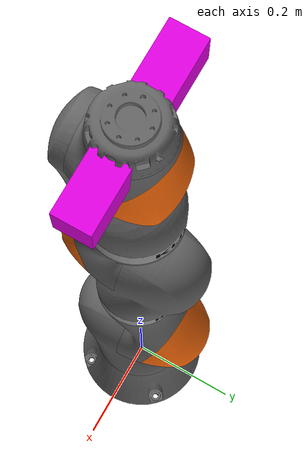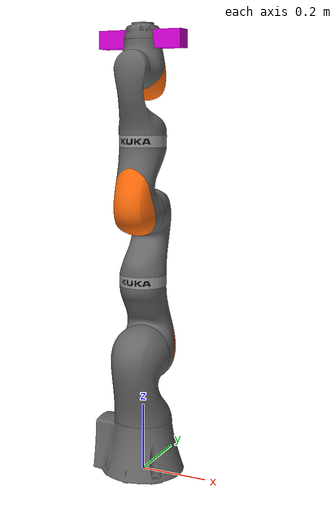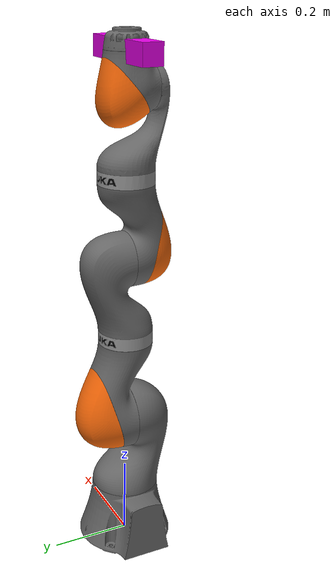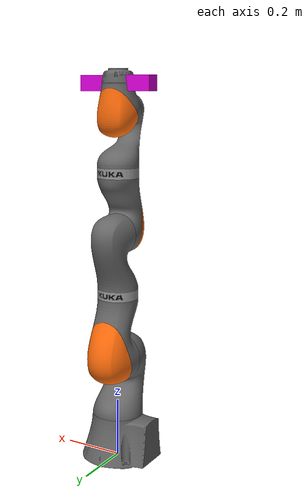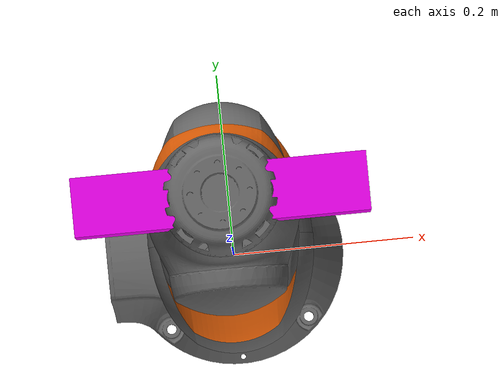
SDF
<?xml version="1.0"?>
<sdf version="1.7">
  <model name="iiwa14">
    <link name="iiwa_link_0">
      <inertial>
        <pose>-0.1 0 0.07 0 0 0</pose>
        <mass>5</mass>
        <inertia>
          <ixx>0.05</ixx>
          <ixy>0</ixy>
          <ixz>0</ixz>
          <iyy>0.06</iyy>
          <iyz>0</iyz>
          <izz>0.03</izz>
        </inertia>
      </inertial>
      <visual name="iiwa_link_0_fixed_joint_lump__iiwa_link_0_visual">
        <geometry>
          <mesh>
            <scale>1 1 1</scale>
            <uri>/home/hanikevi/drake/src/meshes/visual/link_0.obj</uri>
          </mesh>
        </geometry>
        <material>
          <diffuse>0.4 0.4 0.4 1.0</diffuse>
        </material>
      </visual>
      <gravity>1</gravity>
      <velocity_decay/>
      <self_collide>0</self_collide>
    </link>
    <link name="iiwa_link_1">
      <pose relative_to="iiwa_joint_1"/>
      <inertial>
        <pose>0 -0.03 0.12 0 0 0</pose>
        <mass>5.76</mass>
        <inertia>
          <ixx>0.033</ixx>
          <ixy>0</ixy>
          <ixz>0</ixz>
          <iyy>0.0333</iyy>
          <iyz>0</iyz>
          <izz>0.0123</izz>
        </inertia>
      </inertial>
      <visual name="iiwa_link_1_visual">
        <geometry>
          <mesh>
            <scale>1 1 1</scale>
            <uri>/home/hanikevi/drake/src/meshes/visual/link_1.obj</uri>
          </mesh>
        </geometry>
        <material>
          <diffuse>0.4 0.4 0.4 1.0</diffuse>
        </material>
      </visual>
      <gravity>1</gravity>
      <velocity_decay/>
      <self_collide>0</self_collide>
    </link>
    <joint name="iiwa_joint_1" type="revolute">
      <pose relative_to="iiwa_link_0">0 0 0.1575 0 0 0</pose>
      <child>iiwa_link_1</child>
      <parent>iiwa_link_0</parent>
      <axis>
        <xyz>0 0 1</xyz>
        <limit>
          <lower>-2.96706</lower>
          <upper>2.96706</upper>
          <effort>300</effort>
          <velocity>10</velocity>
        </limit>
        <dynamics>
          <damping>0.0</damping>
          <friction>0</friction>
          <spring_reference>0</spring_reference>
          <spring_stiffness>0</spring_stiffness>
        </dynamics>
      </axis>
    </joint>
    <!-- SDFormat 1.7 -->
    <link name="iiwa_link_2">
      <pose relative_to="iiwa_joint_2"/>
      <inertial>
        <pose>0.0003 0.059 0.042 0 0 0</pose>
        <mass>6.35</mass>
        <inertia>
          <ixx>0.0305</ixx>
          <ixy>0</ixy>
          <ixz>0</ixz>
          <iyy>0.0304</iyy>
          <iyz>0</iyz>
          <izz>0.011</izz>
        </inertia>
      </inertial>
      <visual name="iiwa_link_2_visual_grey">
        <geometry>
          <mesh>
            <scale>1 1 1</scale>
            <uri>/home/hanikevi/drake/src/meshes/visual/link_2_grey.obj</uri>
          </mesh>
        </geometry>
        <material>
          <diffuse>0.4 0.4 0.4 1.0</diffuse>
        </material>
      </visual>
      <visual name="iiwa_link_2_visual_orange">
        <geometry>
          <mesh>
            <scale>1 1 1</scale>
            <uri>/home/hanikevi/drake/src/meshes/visual/link_2_orange.obj</uri>
          </mesh>
        </geometry>
        <material>
          <diffuse>1.0 0.423529411765 0.0392156862745 1.0</diffuse>
        </material>
      </visual>
      <gravity>1</gravity>
      <velocity_decay/>
      <self_collide>0</self_collide>
    </link>
    <joint name="iiwa_joint_2" type="revolute">
      <pose relative_to="iiwa_link_1">
        0 0 0.2025 1.570796326794897 0 3.141592653589793
      </pose>
      <child>iiwa_link_2</child>
      <parent>iiwa_link_1</parent>
      <axis>
        <xyz>0 0 1</xyz>
        <limit>
          <lower>-2.0944</lower>
          <upper>2.0944</upper>
          <effort>300</effort>
          <velocity>10</velocity>
        </limit>
        <dynamics>
          <damping>0.0</damping>
          <friction>0</friction>
          <spring_reference>0</spring_reference>
          <spring_stiffness>0</spring_stiffness>
        </dynamics>
      </axis>
    </joint>
    <link name="iiwa_link_3">
      <pose relative_to="iiwa_joint_3"/>
      <inertial>
        <pose>0 0.03 0.13 0 0 0</pose>
        <mass>3.5</mass>
        <inertia>
          <ixx>0.025</ixx>
          <ixy>0</ixy>
          <ixz>0</ixz>
          <iyy>0.0238</iyy>
          <iyz>0</iyz>
          <izz>0.0076</izz>
        </inertia>
      </inertial>
      <visual name="iiwa_link_3_visual">
        <geometry>
          <mesh>
            <scale>1 1 1</scale>
            <uri>/home/hanikevi/drake/src/meshes/visual/link_3.obj</uri>
          </mesh>
        </geometry>
        <material>
          <diffuse>0.4 0.4 0.4 1.0</diffuse>
        </material>
      </visual>
      <visual name="iiwa_link_3_visual_band">
        <geometry>
          <mesh>
            <scale>1 1 1</scale>
            <uri>/home/hanikevi/drake/src//meshes/visual/band.obj</uri>
          </mesh>
        </geometry>
        <material>
          <diffuse>0.6 0.6 0.6 1.0</diffuse>
        </material>
      </visual>
      <visual name="iiwa_link_3_visual_kuka">
        <geometry>
          <mesh>
            <scale>1 1 1</scale>
            <uri>/home/hanikevi/drake/src/meshes/visual/kuka.obj</uri>
          </mesh>
        </geometry>
        <material>
          <diffuse>0 0 0 1</diffuse>
        </material>
      </visual>
      <gravity>1</gravity>
      <velocity_decay/>
      <self_collide>0</self_collide>
    </link>
    <joint name="iiwa_joint_3" type="revolute">
      <pose relative_to="iiwa_link_2">0 0.2045 0 1.570796326794897 0 3.141592653589793</pose>
      <child>iiwa_link_3</child>
      <parent>iiwa_link_2</parent>
      <axis>
        <xyz>0 0 1</xyz>
        <limit>
          <lower>-2.96706</lower>
          <upper>2.96706</upper>
          <effort>300</effort>
          <velocity>10</velocity>
        </limit>
        <dynamics>
          <damping>0.0</damping>
          <friction>0</friction>
          <spring_reference>0</spring_reference>
          <spring_stiffness>0</spring_stiffness>
        </dynamics>
      </axis>
    </joint>
    <link name="iiwa_link_4">
      <pose relative_to="iiwa_joint_4"/>
      <inertial>
        <pose>0 0.067 0.034 0 0 0</pose>
        <mass>3.5</mass>
        <inertia>
          <ixx>0.017</ixx>
          <ixy>0</ixy>
          <ixz>0</ixz>
          <iyy>0.0164</iyy>
          <iyz>0</iyz>
          <izz>0.006</izz>
        </inertia>
      </inertial>
      <visual name="iiwa_link_4_visual_grey">
        <geometry>
          <mesh>
            <scale>1 1 1</scale>
            <uri>/home/hanikevi/drake/src/meshes/visual/link_4_grey.obj</uri>
          </mesh>
        </geometry>
        <material>
          <diffuse>0.4 0.4 0.4 1.0</diffuse>
        </material>
      </visual>
      <visual name="iiwa_link_4_visual_orange">
        <geometry>
          <mesh>
            <scale>1 1 1</scale>
            <uri>/home/hanikevi/drake/src//meshes/visual/link_4_orange.obj</uri>
          </mesh>
        </geometry>
        <material>
          <diffuse>1.0 0.423529411765 0.0392156862745 1.0</diffuse>
        </material>
      </visual>
      <gravity>1</gravity>
      <velocity_decay/>
      <self_collide>0</self_collide>
    </link>
    <joint name="iiwa_joint_4" type="revolute">
      <pose relative_to="iiwa_link_3">0 0 0.2155 1.570796326794897 0 0</pose>
      <child>iiwa_link_4</child>
      <parent>iiwa_link_3</parent>
      <axis>
        <xyz>0 0 1</xyz>
        <limit>
          <lower>-2.0944</lower>
          <upper>2.0944</upper>
          <effort>300</effort>
          <velocity>10</velocity>
        </limit>
        <dynamics>
          <damping>0.0</damping>
          <friction>0</friction>
          <spring_reference>0</spring_reference>
          <spring_stiffness>0</spring_stiffness>
        </dynamics>
      </axis>
    </joint>
    <link name="iiwa_link_5">
      <pose relative_to="iiwa_joint_5"/>
      <inertial>
        <pose>0.0001 0.021 0.076 0 0 0</pose>
        <mass>3.5</mass>
        <inertia>
          <ixx>0.01</ixx>
          <ixy>0</ixy>
          <ixz>0</ixz>
          <iyy>0.0087</iyy>
          <iyz>0</iyz>
          <izz>0.00449</izz>
        </inertia>
      </inertial>
      <visual name="iiwa_link_5_visual">
        <geometry>
          <mesh>
            <scale>1 1 1</scale>
            <uri>/home/hanikevi/drake/src/meshes/visual/link_5.obj</uri>
          </mesh>
        </geometry>
        <material>
          <diffuse>0.4 0.4 0.4 1.0</diffuse>
        </material>
      </visual>
      <visual name="iiwa_link_5_visual_band">
        <geometry>
          <mesh>
            <scale>1 1 1</scale>
            <uri>/home/hanikevi/drake/src/meshes/visual/band.obj</uri>
          </mesh>
        </geometry>
        <material>
          <diffuse>0.6 0.6 0.6 1.0</diffuse>
        </material>
      </visual>
      <visual name="iiwa_link_5_visual_kuka">
        <geometry>
          <mesh>
            <scale>1 1 1</scale>
            <uri>/home/hanikevi/drake/src/meshes/visual/kuka.obj</uri>
          </mesh>
        </geometry>
        <material>
          <diffuse>0 0 0 1</diffuse>
        </material>
      </visual>
      <gravity>1</gravity>
      <velocity_decay/>
      <self_collide>0</self_collide>
    </link>
    <joint name="iiwa_joint_5" type="revolute">
      <pose relative_to="iiwa_link_4">0 0.1845 0 -1.570796326794897 3.141592653589793 0</pose>
      <child>iiwa_link_5</child>
      <parent>iiwa_link_4</parent>
      <axis>
        <xyz>0 0 1</xyz>
        <limit>
          <lower>-2.96706</lower>
          <upper>2.96706</upper>
          <effort>300</effort>
          <velocity>10</velocity>
        </limit>
        <dynamics>
          <damping>0.0</damping>
          <friction>0</friction>
          <spring_reference>0</spring_reference>
          <spring_stiffness>0</spring_stiffness>
        </dynamics>
      </axis>
    </joint>
    <link name="iiwa_link_6">
      <pose relative_to="iiwa_joint_6"/>
      <inertial>
        <pose>0 0.0006 0.0004 0 0 0</pose>
        <mass>1.8</mass>
        <inertia>
          <ixx>0.0049</ixx>
          <ixy>0</ixy>
          <ixz>0</ixz>
          <iyy>0.0047</iyy>
          <iyz>0</iyz>
          <izz>0.0036</izz>
        </inertia>
      </inertial>
      <visual name="iiwa_link_6_visual_grey">
        <geometry>
          <mesh>
            <scale>1 1 1</scale>
            <uri>/home/hanikevi/drake/src/meshes/visual/link_6_grey.obj</uri>
          </mesh>
        </geometry>
        <material>
          <diffuse>0.4 0.4 0.4 1.0</diffuse>
        </material>
      </visual>
      <visual name="iiwa_link_6_visual_orange">
        <geometry>
          <mesh>
            <scale>1 1 1</scale>
            <uri>/home/hanikevi/drake/src/meshes/visual/link_6_orange.obj</uri>
          </mesh>
        </geometry>
        <material>
          <diffuse>1.0 0.423529411765 0.0392156862745 1.0</diffuse>
        </material>
      </visual>
      <gravity>1</gravity>
      <velocity_decay/>
      <self_collide>0</self_collide>
    </link>
    <joint name="iiwa_joint_6" type="revolute">
      <pose relative_to="iiwa_link_5">0 0 0.2155 1.570796326794897 0 0</pose>
      <child>iiwa_link_6</child>
      <parent>iiwa_link_5</parent>
      <axis>
        <xyz>0 0 1</xyz>
        <limit>
          <lower>-2.0944</lower>
          <upper>2.0944</upper>
          <effort>300</effort>
          <velocity>10</velocity>
        </limit>
        <dynamics>
          <damping>0.0</damping>
          <friction>0</friction>
          <spring_reference>0</spring_reference>
          <spring_stiffness>0</spring_stiffness>
        </dynamics>
      </axis>
    </joint>
    <link name="iiwa_link_7">
      <pose relative_to="iiwa_joint_7"/>
      <inertial>
        <pose>0 0 0.02 0 0 0</pose>
        <mass>1.2</mass>
        <inertia>
          <ixx>0.001</ixx>
          <ixy>0</ixy>
          <ixz>0</ixz>
          <iyy>0.001</iyy>
          <iyz>0</iyz>
          <izz>0.001</izz>
        </inertia>
      </inertial>
      <visual name="iiwa_link_7_visual">
        <geometry>
          <mesh>
            <scale>1 1 1</scale>
            <uri>/home/hanikevi/drake/src/meshes/visual/link_7.obj</uri>
          </mesh>
        </geometry>
        <material>
          <diffuse>0.4 0.4 0.4 1.0</diffuse>
        </material>
      </visual>
      <gravity>1</gravity>
      <velocity_decay/>
      <self_collide>0</self_collide>
    </link>
    <joint name="iiwa_joint_7" type="revolute">
      <pose relative_to="iiwa_link_6">
        0 0.081 0 -1.570796326794897 3.141592653589793 0
      </pose>
      <child>iiwa_link_7</child>
      <parent>iiwa_link_6</parent>
      <axis>
        <xyz>0 0 1</xyz>
        <limit>
          <lower>-3.05433</lower>
          <upper>3.05433</upper>
          <effort>300</effort>
          <velocity>10</velocity>
        </limit>
        <dynamics>
          <damping>0.0</damping>
          <friction>0</friction>
          <spring_reference>0</spring_reference>
          <spring_stiffness>0</spring_stiffness>
        </dynamics>
      </axis>
    </joint>
    <link name="arm">
      <pose relative_to="iiwa_joint_ee"/>
      <inertial>
        <pose>0 0 0.02 0 0 0</pose>
        <mass>1.2</mass>
        <inertia>
          <ixx>0.001</ixx>
          <ixy>0</ixy>
          <ixz>0</ixz>
          <iyy>0.001</iyy>
          <iyz>0</iyz>
          <izz>0.001</izz>
        </inertia>
      </inertial>
      <visual name="arm_visual">
        <geometry>
          <box>
            <size>0.25 0.05 0.05</size>
          </box>
        </geometry>
        <material>
          <diffuse>0.9 0.0 0.9 1.0</diffuse>
        </material>
      </visual>
      <gravity>1</gravity>
      <velocity_decay/>
      <self_collide>0</self_collide>
    </link>
    <joint name="iiwa_joint_ee" type="fixed">
      <pose relative_to="iiwa_link_7">
        0 0 0 0 0 0
      </pose>
      <child>arm</child>
      <parent>iiwa_link_7</parent>
      <axis>
        <xyz>0 0 1</xyz>
        <limit>
          <lower>-3.05433</lower>
          <upper>3.05433</upper>
          <effort>300</effort>
          <velocity>10</velocity>
        </limit>
        <dynamics>
          <damping>0.0</damping>
          <friction>0</friction>
          <spring_reference>0</spring_reference>
          <spring_stiffness>0</spring_stiffness>
        </dynamics>
      </axis>
    </joint>
    <static>0</static>
    <plugin name="gazebo_ros_controller" filename="libgazebo_ros_control.so">
      <robotNamespace>/iiwa</robotNamespace>
    </plugin>
  </model>
</sdf>
